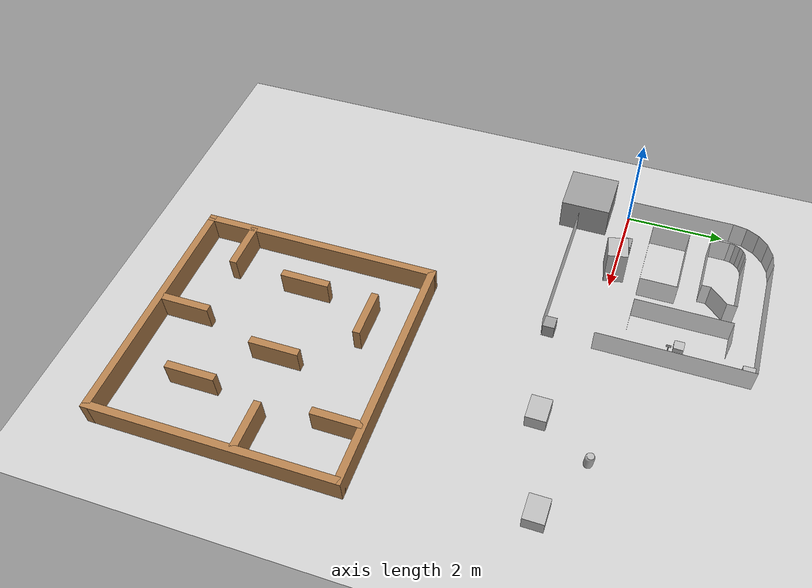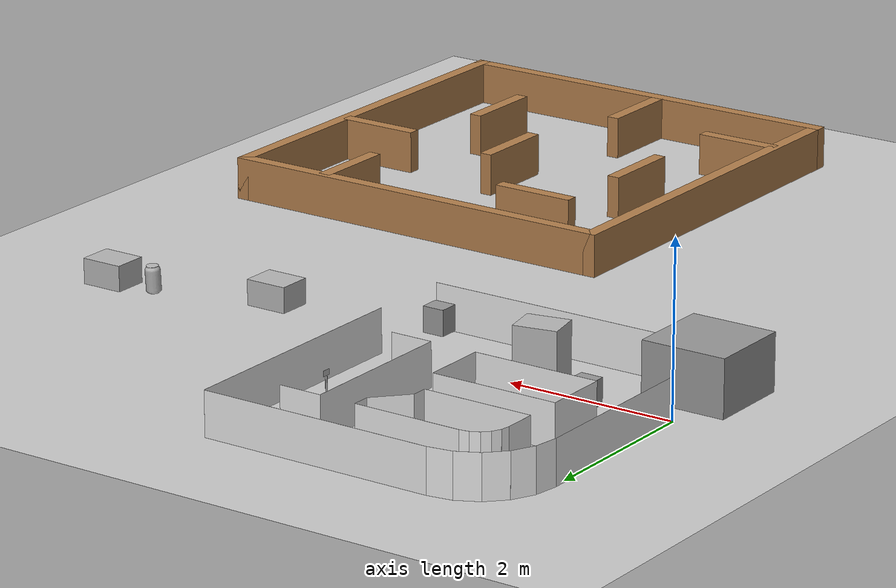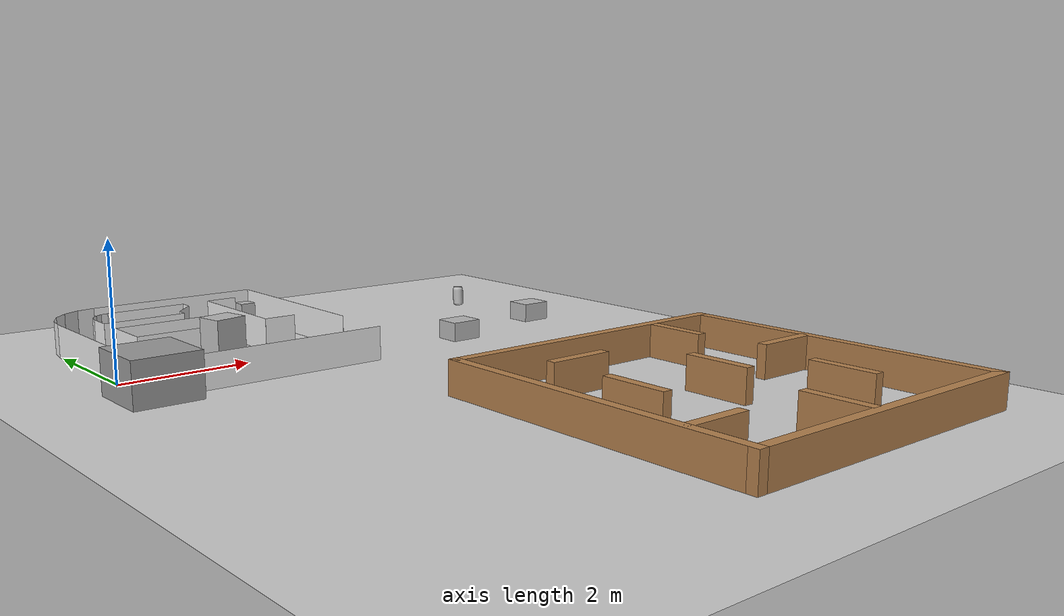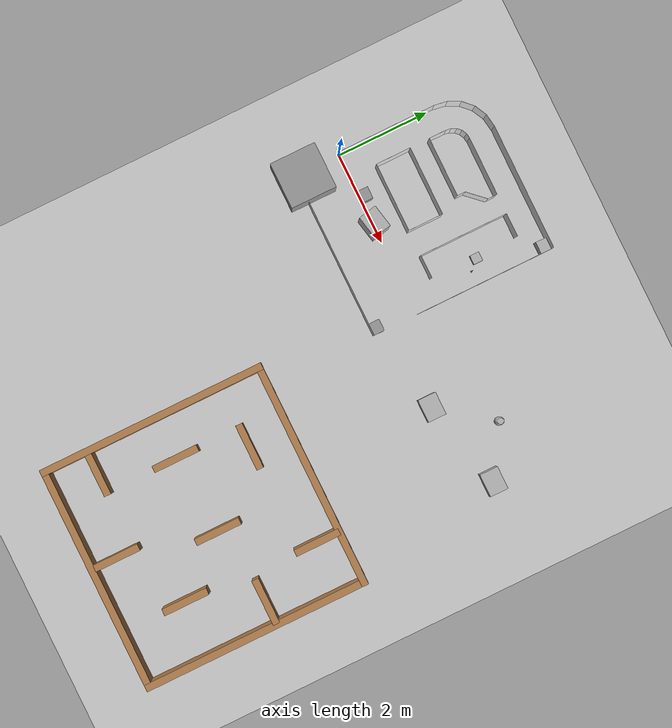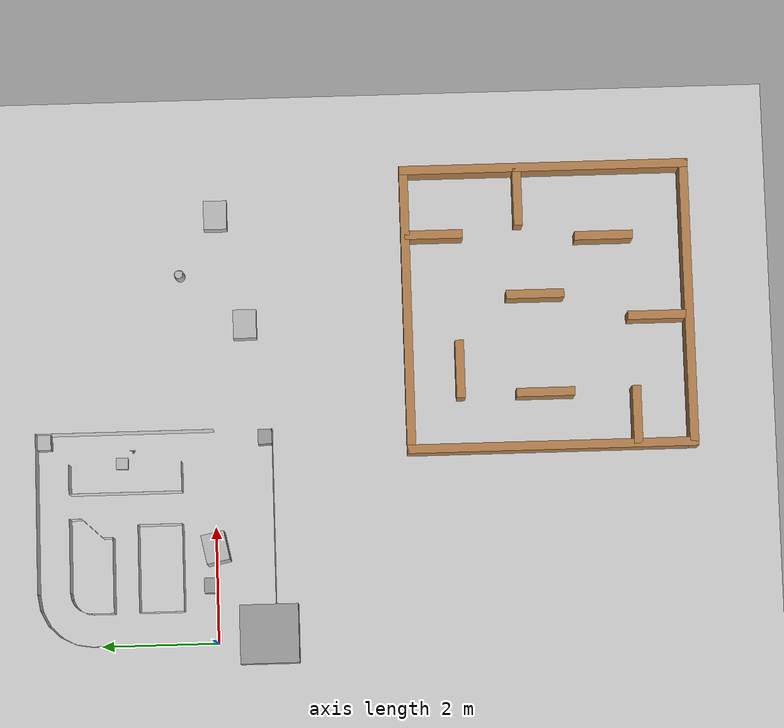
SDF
<sdf version="1.7">
 <world name="default">
  <light name="sun" type="directional">
   <pose>0 0 10 0 -0 0</pose>
   <diffuse>0.8 0.8 0.8 1</diffuse>
   <specular>0.1 0.1 0.1 1</specular>
   <attenuation>
    <range>1000</range>
    <constant>0.9</constant>
    <linear>0.01</linear>
    <quadratic>0.001</quadratic>
   </attenuation>
   <direction>-0.5 0.5 -1</direction>
   <spot><inner_angle>0</inner_angle><outer_angle>0</outer_angle><falloff>0</falloff></spot>
  </light>
  <model name="ground_plane">
   <static>1</static>
   <link name="link">
    <collision name="collision">
     <geometry><plane><normal>0 0 1</normal><size>100 100</size></plane></geometry>
     <surface><friction><ode><mu>100</mu><mu2>50</mu2></ode></friction></surface>
    </collision>
    <visual name="visual">
     <cast_shadows>0</cast_shadows>
     <geometry><plane><normal>0 0 1</normal><size>100 100</size></plane></geometry>
     <material>
      <script><uri>file://media/materials/scripts/gazebo.material</uri><name>Gazebo/Grey</name></script>
     </material>
    </visual>
   </link>
  </model>
  <model name="wall_0">
   <static>1</static>
   <link name="link">
    <collision name="collision"><geometry><box><size>2.1336 0.001 1</size></box></geometry></collision>
    <visual name="visual">
     <geometry><box><size>2.1336 0.001 1</size></box></geometry>
     <material>
      <script><name>Gazebo/White</name><uri>file://media/materials/scripts/gazebo.material</uri></script>
     </material>
    </visual>
   </link>
   <pose>0 1.0668 0 0 -0 1.5708</pose>
  </model>
  <model name="wall_1">
   <static>1</static>
   <link name="link">
    <collision name="collision"><geometry><box><size>0.286088 0.001 1</size></box></geometry></collision>
    <visual name="visual">
     <geometry><box><size>0.286088 0.001 1</size></box></geometry>
     <material>
      <script><name>Gazebo/White</name><uri>file://media/materials/scripts/gazebo.material</uri></script>
     </material>
    </visual>
   </link>
   <pose>0.022377 2.27489 0 0 -0 1.41372</pose>
  </model>
  <model name="wall_2">
   <static>1</static>
   <link name="link">
    <collision name="collision"><geometry><box><size>0.286088 0.001 1</size></box></geometry></collision>
    <visual name="visual">
     <geometry><box><size>0.286088 0.001 1</size></box></geometry>
     <material>
      <script><name>Gazebo/White</name><uri>file://media/materials/scripts/gazebo.material</uri></script>
     </material>
    </visual>
   </link>
   <pose>0.109695 2.54362 0 0 -0 1.09956</pose>
  </model>
  <model name="wall_3">
   <static>1</static>
   <link name="link">
    <collision name="collision"><geometry><box><size>0.286088 0.001 1</size></box></geometry></collision>
    <visual name="visual">
     <geometry><box><size>0.286088 0.001 1</size></box></geometry>
     <material>
      <script><name>Gazebo/White</name><uri>file://media/materials/scripts/gazebo.material</uri></script>
     </material>
    </visual>
   </link>
   <pose>0.275783 2.77222 0 0 -0 0.785398</pose>
  </model>
  <model name="wall_4">
   <static>1</static>
   <link name="link">
    <collision name="collision"><geometry><box><size>0.286088 0.001 1</size></box></geometry></collision>
    <visual name="visual">
     <geometry><box><size>0.286088 0.001 1</size></box></geometry>
     <material>
      <script><name>Gazebo/White</name><uri>file://media/materials/scripts/gazebo.material</uri></script>
     </material>
    </visual>
   </link>
   <pose>0.504383 2.93831 0 0 -0 0.471239</pose>
  </model>
  <model name="wall_5">
   <static>1</static>
   <link name="link">
    <collision name="collision"><geometry><box><size>0.286088 0.001 1</size></box></geometry></collision>
    <visual name="visual">
     <geometry><box><size>0.286088 0.001 1</size></box></geometry>
     <material>
      <script><name>Gazebo/White</name><uri>file://media/materials/scripts/gazebo.material</uri></script>
     </material>
    </visual>
   </link>
   <pose>0.773119 3.02563 0 0 -0 0.15708</pose>
  </model>
  <model name="wall_6">
   <static>1</static>
   <link name="link">
    <collision name="collision"><geometry><box><size>2.74321 0.001 1</size></box></geometry></collision>
    <visual name="visual">
     <geometry><box><size>2.74321 0.001 1</size></box></geometry>
     <material>
      <script><name>Gazebo/White</name><uri>file://media/materials/scripts/gazebo.material</uri></script>
     </material>
    </visual>
   </link>
   <pose>2.286 3.04801 0 0 -0 0</pose>
  </model>
  <model name="wall_7">
   <static>1</static>
   <link name="link">
    <collision name="collision"><geometry><box><size>3.04801 0.001 1</size></box></geometry></collision>
    <visual name="visual">
     <geometry><box><size>3.04801 0.001 1</size></box></geometry>
     <material>
      <script><name>Gazebo/White</name><uri>file://media/materials/scripts/gazebo.material</uri></script>
     </material>
    </visual>
   </link>
   <pose>3.65761 1.524 0 0 0 -1.5708</pose>
  </model>
  <model name="wall_8">
   <static>1</static>
   <link name="link">
    <collision name="collision"><geometry><box><size>3.65761 0.001 1</size></box></geometry></collision>
    <visual name="visual">
     <geometry><box><size>3.65761 0.001 1</size></box></geometry>
     <material>
      <script><name>Gazebo/White</name><uri>file://media/materials/scripts/gazebo.material</uri></script>
     </material>
    </visual>
   </link>
   <pose>1.8288 -1.00563 0 0 0 -3.14159</pose>
  </model>
  <model name="wall_9">
   <static>1</static>
   <link name="link">
    <collision name="collision"><geometry><box><size>0.762002 0.001 1</size></box></geometry></collision>
    <visual name="visual">
     <geometry><box><size>0.762002 0.001 1</size></box></geometry>
     <material>
      <script><name>Gazebo/White</name><uri>file://media/materials/scripts/gazebo.material</uri></script>
     </material>
    </visual>
   </link>
   <pose>0.558801 0.939802 0 0 -0 1.5708</pose>
  </model>
  <model name="wall_10">
   <static>1</static>
   <link name="link">
    <collision name="collision"><geometry><box><size>1.4986 0.001 1</size></box></geometry></collision>
    <visual name="visual">
     <geometry><box><size>1.4986 0.001 1</size></box></geometry>
     <material>
      <script><name>Gazebo/White</name><uri>file://media/materials/scripts/gazebo.material</uri></script>
     </material>
    </visual>
   </link>
   <pose>1.3081 1.3208 0 0 -0 0</pose>
  </model>
  <model name="wall_11">
   <static>1</static>
   <link name="link">
    <collision name="collision"><geometry><box><size>0.762002 0.001 1</size></box></geometry></collision>
    <visual name="visual">
     <geometry><box><size>0.762002 0.001 1</size></box></geometry>
     <material>
      <script><name>Gazebo/White</name><uri>file://media/materials/scripts/gazebo.material</uri></script>
     </material>
    </visual>
   </link>
   <pose>2.0574 0.939802 0 0 0 -1.5708</pose>
  </model>
  <model name="wall_12">
   <static>1</static>
   <link name="link">
    <collision name="collision"><geometry><box><size>1.4986 0.001 1</size></box></geometry></collision>
    <visual name="visual">
     <geometry><box><size>1.4986 0.001 1</size></box></geometry>
     <material>
      <script><name>Gazebo/White</name><uri>file://media/materials/scripts/gazebo.material</uri></script>
     </material>
    </visual>
   </link>
   <pose>1.3081 0.558801 0 0 0 -3.14159</pose>
  </model>
  <model name="wall_13">
   <static>1</static>
   <link name="link">
    <collision name="collision"><geometry><box><size>0.381001 0.001 1</size></box></geometry></collision>
    <visual name="visual">
     <geometry><box><size>0.381001 0.001 1</size></box></geometry>
     <material>
      <script><name>Gazebo/White</name><uri>file://media/materials/scripts/gazebo.material</uri></script>
     </material>
    </visual>
   </link>
   <pose>0.558801 1.9431 0 0 -0 1.5708</pose>
  </model>
  <model name="wall_14">
   <static>1</static>
   <link name="link">
    <collision name="collision"><geometry><box><size>0.111256 0.001 1</size></box></geometry></collision>
    <visual name="visual">
     <geometry><box><size>0.111256 0.001 1</size></box></geometry>
     <material>
      <script><name>Gazebo/White</name><uri>file://media/materials/scripts/gazebo.material</uri></script>
     </material>
    </visual>
   </link>
   <pose>0.567503 2.18855 0 0 -0 1.41372</pose>
  </model>
  <model name="wall_15">
   <static>1</static>
   <link name="link">
    <collision name="collision"><geometry><box><size>0.111256 0.001 1</size></box></geometry></collision>
    <visual name="visual">
     <geometry><box><size>0.111256 0.001 1</size></box></geometry>
     <material>
      <script><name>Gazebo/White</name><uri>file://media/materials/scripts/gazebo.material</uri></script>
     </material>
    </visual>
   </link>
   <pose>0.60146 2.29306 0 0 -0 1.09956</pose>
  </model>
  <model name="wall_16">
   <static>1</static>
   <link name="link">
    <collision name="collision"><geometry><box><size>0.111256 0.001 1</size></box></geometry></collision>
    <visual name="visual">
     <geometry><box><size>0.111256 0.001 1</size></box></geometry>
     <material>
      <script><name>Gazebo/White</name><uri>file://media/materials/scripts/gazebo.material</uri></script>
     </material>
    </visual>
   </link>
   <pose>0.66605 2.38196 0 0 -0 0.785398</pose>
  </model>
  <model name="wall_17">
   <static>1</static>
   <link name="link">
    <collision name="collision"><geometry><box><size>0.111256 0.001 1</size></box></geometry></collision>
    <visual name="visual">
     <geometry><box><size>0.111256 0.001 1</size></box></geometry>
     <material>
      <script><name>Gazebo/White</name><uri>file://media/materials/scripts/gazebo.material</uri></script>
     </material>
    </visual>
   </link>
   <pose>0.75495 2.44655 0 0 -0 0.471239</pose>
  </model>
  <model name="wall_18">
   <static>1</static>
   <link name="link">
    <collision name="collision"><geometry><box><size>0.111256 0.001 1</size></box></geometry></collision>
    <visual name="visual">
     <geometry><box><size>0.111256 0.001 1</size></box></geometry>
     <material>
      <script><name>Gazebo/White</name><uri>file://media/materials/scripts/gazebo.material</uri></script>
     </material>
    </visual>
   </link>
   <pose>0.859458 2.4805 0 0 -0 0.15708</pose>
  </model>
  <model name="wall_19">
   <static>1</static>
   <link name="link">
    <collision name="collision"><geometry><box><size>1.27 0.001 1</size></box></geometry></collision>
    <visual name="visual">
     <geometry><box><size>1.27 0.001 1</size></box></geometry>
     <material>
      <script><name>Gazebo/White</name><uri>file://media/materials/scripts/gazebo.material</uri></script>
     </material>
    </visual>
   </link>
   <pose>1.5494 2.48921 0 0 -0 0</pose>
  </model>
  <model name="wall_20">
   <static>1</static>
   <link name="link">
    <collision name="collision"><geometry><box><size>0.2032 0.001 1</size></box></geometry></collision>
    <visual name="visual">
     <geometry><box><size>0.2032 0.001 1</size></box></geometry>
     <material>
      <script><name>Gazebo/White</name><uri>file://media/materials/scripts/gazebo.material</uri></script>
     </material>
    </visual>
   </link>
   <pose>2.1844 2.38761 0 0 0 -1.5708</pose>
  </model>
  <model name="wall_21">
   <static>1</static>
   <link name="link">
    <collision name="collision"><geometry><box><size>0.485267 0.001 1</size></box></geometry></collision>
    <visual name="visual">
     <geometry><box><size>0.485267 0.001 1</size></box></geometry>
     <material>
      <script><name>Gazebo/White</name><uri>file://media/materials/scripts/gazebo.material</uri></script>
     </material>
    </visual>
   </link>
   <pose>2.0193 2.1082 0 0 0 -2.31917</pose>
  </model>
  <model name="wall_22">
   <static>1</static>
   <link name="link">
    <collision name="collision"><geometry><box><size>0.1778 0.001 1</size></box></geometry></collision>
    <visual name="visual">
     <geometry><box><size>0.1778 0.001 1</size></box></geometry>
     <material>
      <script><name>Gazebo/White</name><uri>file://media/materials/scripts/gazebo.material</uri></script>
     </material>
    </visual>
   </link>
   <pose>1.8542 1.8415 0 0 0 -1.5708</pose>
  </model>
  <model name="wall_23">
   <static>1</static>
   <link name="link">
    <collision name="collision"><geometry><box><size>1.2954 0.001 1</size></box></geometry></collision>
    <visual name="visual">
     <geometry><box><size>1.2954 0.001 1</size></box></geometry>
     <material>
      <script><name>Gazebo/White</name><uri>file://media/materials/scripts/gazebo.material</uri></script>
     </material>
    </visual>
   </link>
   <pose>1.2065 1.7526 0 0 0 -3.14159</pose>
  </model>
  <model name="wall_24">
   <static>1</static>
   <link name="link">
    <collision name="collision"><geometry><box><size>0.508001 0.001 1</size></box></geometry></collision>
    <visual name="visual">
     <geometry><box><size>0.508001 0.001 1</size></box></geometry>
     <material>
      <script><name>Gazebo/White</name><uri>file://media/materials/scripts/gazebo.material</uri></script>
     </material>
    </visual>
   </link>
   <pose>2.87021 2.48921 0 0 -0 0</pose>
  </model>
  <model name="wall_25">
   <static>1</static>
   <link name="link">
    <collision name="collision"><geometry><box><size>0.508001 0.001 1</size></box></geometry></collision>
    <visual name="visual">
     <geometry><box><size>0.508001 0.001 1</size></box></geometry>
     <material>
      <script><name>Gazebo/White</name><uri>file://media/materials/scripts/gazebo.material</uri></script>
     </material>
    </visual>
   </link>
   <pose>2.87021 0.558801 0 0 0 -3.14159</pose>
  </model>
  <model name="wall_26">
   <static>1</static>
   <link name="link">
    <collision name="collision"><geometry><box><size>1.9304 0.001 1</size></box></geometry></collision>
    <visual name="visual">
     <geometry><box><size>1.9304 0.001 1</size></box></geometry>
     <material>
      <script><name>Gazebo/White</name><uri>file://media/materials/scripts/gazebo.material</uri></script>
     </material>
    </visual>
   </link>
   <pose>2.6162 1.524 0 0 -0 1.5708</pose>
  </model>
  <model name="flag">
   <link name="plate">
    <pose>0 0 0.2425 0 -0 0</pose>
    <collision name="collision">
     <geometry><box><size>0.001 0.1 0.065</size></box></geometry>
     <surface><friction><ode><mu>1</mu><mu2>1</mu2></ode></friction></surface>
    </collision>
    <visual name="visual"><geometry><box><size>0.001 0.1 0.065</size></box></geometry></visual>
    <inertial>
     <inertia><ixx>0.1</ixx><ixy>0</ixy><ixz>0</ixz><iyy>0.1</iyy><iyz>0</iyz><izz>0.1</izz></inertia>
     <mass>0.1</mass>
    </inertial>
   </link>
   <link name="pole">
    <pose>0 0 0.11 0 -0 0</pose>
    <collision name="collision">
     <geometry><cylinder><radius>0.01</radius><length>0.2</length></cylinder></geometry>
     <surface>
      <friction><torsional><coefficient>1</coefficient></torsional><ode><mu>1</mu><mu2>1</mu2></ode></friction>
     </surface>
    </collision>
    <visual name="visual">
     <geometry><cylinder><radius>0.01</radius><length>0.2</length></cylinder></geometry>
    </visual>
    <inertial>
     <inertia><ixx>1</ixx><ixy>0</ixy><ixz>0</ixz><iyy>1</iyy><iyz>0</iyz><izz>1</izz></inertia>
     <mass>1</mass>
    </inertial>
   </link>
   <link name="base">
    <collision name="collision">
     <geometry><cylinder><radius>0.02</radius><length>0.02</length></cylinder></geometry>
     <surface><friction><ode><mu>0.01</mu><mu2>0.01</mu2></ode></friction></surface>
    </collision>
    <visual name="visual">
     <geometry><cylinder><radius>0.02</radius><length>0.02</length></cylinder></geometry>
    </visual>
    <inertial>
     <inertia><ixx>0.1</ixx><ixy>0</ixy><ixz>0</ixz><iyy>0.1</iyy><iyz>0</iyz><izz>0.1</izz></inertia>
     <mass>0.1</mass>
    </inertial>
    <gravity>0</gravity>
   </link>
   <joint name="base_pole" type="fixed">
    <parent>base</parent>
    <child>pole</child>
    <pose>0 0 0.02 0 -0 0</pose>
   </joint>
   <joint name="pole_plate" type="fixed">
    <parent>pole</parent>
    <child>plate</child>
    <pose>0 0 0.1 0 -0 0</pose>
   </joint>
   <pose>3.34999 1.40117 0.010022 -0.001131 0.00093 -3.14054</pose>
  </model>
  <gravity>0 0 -9.8</gravity>
  <magnetic_field>6e-06 2.3e-05 -4.2e-05</magnetic_field>
  <atmosphere type="adiabatic"/>
  <physics name="default_physics" default="0" type="ode">
   <max_step_size>0.001</max_step_size>
   <real_time_factor>1</real_time_factor>
   <real_time_update_rate>1000</real_time_update_rate>
  </physics>
  <scene><ambient>0.4 0.4 0.4 1</ambient><background>0.7 0.7 0.7 1</background><shadows>1</shadows></scene>
  <spherical_coordinates>
   <surface_model>EARTH_WGS84</surface_model>
   <latitude_deg>0</latitude_deg>
   <longitude_deg>0</longitude_deg>
   <elevation>0</elevation>
   <heading_deg>0</heading_deg>
  </spherical_coordinates>
  <model name="unit_box">
   <pose>0.13088 -0.8858 0.150696 0 -0 8e-06</pose>
   <link name="link">
    <inertial>
     <mass>1</mass>
     <inertia>
      <ixx>0.166667</ixx>
      <ixy>0</ixy>
      <ixz>0</ixz>
      <iyy>0.166667</iyy>
      <iyz>0</iyz>
      <izz>0.166667</izz>
     </inertia>
    </inertial>
    <collision name="collision"><geometry><box><size>1 0.999999 1</size></box></geometry></collision>
    <visual name="visual">
     <geometry><box><size>1 0.999999 1</size></box></geometry>
     <material>
      <script><name>Gazebo/Grey</name><uri>file://media/materials/scripts/gazebo.material</uri></script>
     </material>
    </visual>
   </link>
  </model>
  <model name="turtlebot3_plaza">
   <pose>5.63971 -5.81892 0 0 -0 0</pose>
   <link name="Wall_0">
    <collision name="Wall_0_Collision">
     <geometry><box><size>5 0.15 0.5</size></box></geometry>
     <pose>0 0 0.25 0 -0 0</pose>
    </collision>
    <visual name="Wall_0_Visual">
     <pose>0 0 0.25 0 -0 0</pose>
     <geometry><box><size>5 0.15 0.5</size></box></geometry>
     <material>
      <script><uri>file://media/materials/scripts/gazebo.material</uri><name>Gazebo/Wood</name></script>
      <ambient>1 1 1 1</ambient>
     </material>
    </visual>
    <pose>-2.425 0 0 0 -0 1.5708</pose>
   </link>
   <link name="Wall_11">
    <collision name="Wall_11_Collision">
     <geometry><box><size>1 0.15 0.5</size></box></geometry>
     <pose>0 0 0.25 0 -0 0</pose>
    </collision>
    <visual name="Wall_11_Visual">
     <pose>0 0 0.25 0 -0 0</pose>
     <geometry><box><size>1 0.15 0.5</size></box></geometry>
     <material>
      <script><uri>file://media/materials/scripts/gazebo.material</uri><name>Gazebo/Wood</name></script>
      <ambient>1 1 1 1</ambient>
     </material>
    </visual>
    <pose>-1.937 -1.467 0 0 -0 0</pose>
   </link>
   <link name="Wall_13">
    <collision name="Wall_13_Collision">
     <geometry><box><size>1 0.15 0.5</size></box></geometry>
     <pose>0 0 0.25 0 -0 0</pose>
    </collision>
    <visual name="Wall_13_Visual">
     <pose>0 0 0.25 0 -0 0</pose>
     <geometry><box><size>1 0.15 0.5</size></box></geometry>
     <material>
      <script><uri>file://media/materials/scripts/gazebo.material</uri><name>Gazebo/Wood</name></script>
      <ambient>1 1 1 1</ambient>
     </material>
    </visual>
    <pose>-0.22 -1.866 0 0 0 -1.5708</pose>
   </link>
   <link name="Wall_15">
    <collision name="Wall_15_Collision">
     <geometry><box><size>1 0.15 0.5</size></box></geometry>
     <pose>0 0 0.25 0 -0 0</pose>
    </collision>
    <visual name="Wall_15_Visual">
     <pose>0 0 0.25 0 -0 0</pose>
     <geometry><box><size>1 0.15 0.5</size></box></geometry>
     <material>
      <script><uri>file://media/materials/scripts/gazebo.material</uri><name>Gazebo/Wood</name></script>
      <ambient>1 1 1 1</ambient>
     </material>
    </visual>
    <pose>1.195 -1.002 0 0 -0 1.5708</pose>
   </link>
   <link name="Wall_17">
    <collision name="Wall_17_Collision">
     <geometry><box><size>1 0.15 0.5</size></box></geometry>
     <pose>0 0 0.25 0 -0 0</pose>
    </collision>
    <visual name="Wall_17_Visual">
     <pose>0 0 0.25 0 -0 0</pose>
     <geometry><box><size>1 0.15 0.5</size></box></geometry>
     <material>
      <script><uri>file://media/materials/scripts/gazebo.material</uri><name>Gazebo/Wood</name></script>
      <ambient>1 1 1 1</ambient>
     </material>
    </visual>
    <pose>1.288 1.93 0 0 0 -1.5708</pose>
   </link>
   <link name="Wall_19">
    <collision name="Wall_19_Collision">
     <geometry><box><size>1 0.15 0.5</size></box></geometry>
     <pose>0 0 0.25 0 -0 0</pose>
    </collision>
    <visual name="Wall_19_Visual">
     <pose>0 0 0.25 0 -0 0</pose>
     <geometry><box><size>1 0.15 0.5</size></box></geometry>
     <material>
      <script><uri>file://media/materials/scripts/gazebo.material</uri><name>Gazebo/Wood</name></script>
      <ambient>1 1 1 1</ambient>
     </material>
    </visual>
    <pose>1.91128 0.4632 0 0 -0 0</pose>
   </link>
   <link name="Wall_2">
    <collision name="Wall_2_Collision">
     <geometry><box><size>5 0.15 0.5</size></box></geometry>
     <pose>0 0 0.25 0 -0 0</pose>
    </collision>
    <visual name="Wall_2_Visual">
     <pose>0 0 0.25 0 -0 0</pose>
     <geometry><box><size>5 0.15 0.5</size></box></geometry>
     <material>
      <script><uri>file://media/materials/scripts/gazebo.material</uri><name>Gazebo/Wood</name></script>
      <ambient>1 1 1 1</ambient>
     </material>
    </visual>
    <pose>0 2.425 0 0 -0 0</pose>
   </link>
   <link name="Wall_21">
    <collision name="Wall_21_Collision">
     <geometry><box><size>1 0.15 0.5</size></box></geometry>
     <pose>0 0 0.25 0 -0 0</pose>
    </collision>
    <visual name="Wall_21_Visual">
     <pose>0 0 0.25 0 -0 0</pose>
     <geometry><box><size>1 0.15 0.5</size></box></geometry>
     <material>
      <script><uri>file://media/materials/scripts/gazebo.material</uri><name>Gazebo/Wood</name></script>
      <ambient>1 1 1 1</ambient>
     </material>
    </visual>
    <pose>0.204 0.215 0 0 0 -1.5708</pose>
   </link>
   <link name="Wall_3">
    <collision name="Wall_3_Collision">
     <geometry><box><size>5 0.15 0.5</size></box></geometry>
     <pose>0 0 0.25 0 -0 0</pose>
    </collision>
    <visual name="Wall_3_Visual">
     <pose>0 0 0.25 0 -0 0</pose>
     <geometry><box><size>5 0.15 0.5</size></box></geometry>
     <material>
      <script><uri>file://media/materials/scripts/gazebo.material</uri><name>Gazebo/Wood</name></script>
      <ambient>1 1 1 1</ambient>
     </material>
    </visual>
    <pose>2.425 0 0 0 0 -1.5708</pose>
   </link>
   <link name="Wall_4">
    <collision name="Wall_4_Collision">
     <geometry><box><size>5 0.15 0.5</size></box></geometry>
     <pose>0 0 0.25 0 -0 0</pose>
    </collision>
    <visual name="Wall_4_Visual">
     <pose>0 0 0.25 0 -0 0</pose>
     <geometry><box><size>5 0.15 0.5</size></box></geometry>
     <material>
      <script><uri>file://media/materials/scripts/gazebo.material</uri><name>Gazebo/Wood</name></script>
      <ambient>1 1 1 1</ambient>
     </material>
    </visual>
    <pose>0 -2.425 0 0 -0 3.14159</pose>
   </link>
   <link name="Wall_7">
    <collision name="Wall_7_Collision">
     <geometry><box><size>1 0.15 0.5</size></box></geometry>
     <pose>0 0 0.25 0 -0 0</pose>
    </collision>
    <visual name="Wall_7_Visual">
     <pose>0 0 0.25 0 -0 0</pose>
     <geometry><box><size>1 0.15 0.5</size></box></geometry>
     <material>
      <script><uri>file://media/materials/scripts/gazebo.material</uri><name>Gazebo/Wood</name></script>
      <ambient>1 1 1 1</ambient>
     </material>
    </visual>
    <pose>-1.064 1.548 0 0 -0 0</pose>
   </link>
   <link name="Wall_9">
    <collision name="Wall_9_Collision">
     <geometry><box><size>1 0.15 0.5</size></box></geometry>
     <pose>0 0 0.25 0 -0 0</pose>
    </collision>
    <visual name="Wall_9_Visual">
     <pose>0 0 0.25 0 -0 0</pose>
     <geometry><box><size>1 0.15 0.5</size></box></geometry>
     <material>
      <script><uri>file://media/materials/scripts/gazebo.material</uri><name>Gazebo/Wood</name></script>
      <ambient>1 1 1 1</ambient>
     </material>
    </visual>
    <pose>-1.502 0.092 0 0 0 -1.5708</pose>
   </link>
   <static>1</static>
  </model>
  <model name="unit_box_clone_0">
   <pose>0.993739 0.100476 0.150696 0 -0 1e-05</pose>
   <link name="link">
    <inertial>
     <mass>1</mass>
     <inertia>
      <ixx>0.166667</ixx>
      <ixy>0</ixy>
      <ixz>0</ixz>
      <iyy>0.166667</iyy>
      <iyz>0</iyz>
      <izz>0.166667</izz>
     </inertia>
    </inertial>
    <collision name="collision">
     <geometry><box><size>0.259292 0.232104 0.301392</size></box></geometry>
    </collision>
    <visual name="visual">
     <geometry><box><size>0.259292 0.232104 0.301392</size></box></geometry>
     <material>
      <script><name>Gazebo/Grey</name><uri>file://media/materials/scripts/gazebo.material</uri></script>
     </material>
    </visual>
   </link>
  </model>
  <model name="unit_box_clone_2">
   <pose>3.52747 2.91638 0.150696 0 -0 -4e-06</pose>
   <link name="link">
    <inertial>
     <mass>1</mass>
     <inertia>
      <ixx>0.166667</ixx>
      <ixy>0</ixy>
      <ixz>0</ixz>
      <iyy>0.166667</iyy>
      <iyz>0</iyz>
      <izz>0.166667</izz>
     </inertia>
    </inertial>
    <collision name="collision">
     <geometry><box><size>0.259292 0.232104 0.301392</size></box></geometry>
    </collision>
    <visual name="visual">
     <geometry><box><size>0.259292 0.232104 0.301392</size></box></geometry>
     <material>
      <script>
       <uri>model:/catkin_ws/src/asl_turtlebot/models/materials/scripts</uri>
       <uri>model:/catkin_ws/src/asl_turtlebot/models/materials/textures</uri>
       <name>animal/Diffuse</name>
      </script>
     </material>
    </visual>
   </link>
  </model>
  <model name="cardboard_box1">
   <pose>1.61279 -0.006215 0.449 0 -0 0</pose>
   <link name="link">
    <inertial>
     <mass>2</mass>
     <inertia>
      <ixx>0.0416667</ixx>
      <ixy>0</ixy>
      <ixz>0</ixz>
      <iyy>0.0566667</iyy>
      <iyz>0</iyz>
      <izz>0.0683333</izz>
     </inertia>
    </inertial>
    <collision name="collision">
     <geometry><box><size>0.5 0.4 0.9</size></box></geometry>
     <surface>
      <friction><ode><mu>1</mu><mu2>1</mu2></ode></friction>
      <contact><ode><kp>1e+07</kp><kd>1</kd><min_depth>0.001</min_depth><max_vel>0.1</max_vel></ode></contact>
     </surface>
    </collision>
    <visual name="visual">
     <pose>0 0 -0.15 0 -0 0.2</pose>
     <geometry><box><size>0.5 0.4 0.9</size></box></geometry>
     <material>
      <script>
       <uri>model://cardboard_box/materials/scripts</uri>
       <uri>model://cardboard_box/materials/textures</uri>
       <name>animal/Diffuse</name>
      </script>
     </material>
    </visual>
   </link>
  </model>
  <model name="unit_box_clone_3">
   <pose>3.52745 -0.877377 0.150696 0 0 -5e-06</pose>
   <link name="link">
    <inertial>
     <mass>1</mass>
     <inertia>
      <ixx>0.166667</ixx>
      <ixy>0</ixy>
      <ixz>0</ixz>
      <iyy>0.166667</iyy>
      <iyz>0</iyz>
      <izz>0.166667</izz>
     </inertia>
    </inertial>
    <collision name="collision">
     <geometry><box><size>0.259292 0.232104 0.301392</size></box></geometry>
    </collision>
    <visual name="visual">
     <geometry><box><size>0.259292 0.232104 0.301392</size></box></geometry>
     <material>
      <script><name>Gazebo/Grey</name><uri>file://media/materials/scripts/gazebo.material</uri></script>
     </material>
    </visual>
   </link>
  </model>
  <model name="cardboard_box">
   <pose>7.41402 -0.107796 0.149 0 -0 0</pose>
   <link name="link">
    <inertial>
     <mass>2</mass>
     <inertia>
      <ixx>0.0416667</ixx>
      <ixy>0</ixy>
      <ixz>0</ixz>
      <iyy>0.0566667</iyy>
      <iyz>0</iyz>
      <izz>0.0683333</izz>
     </inertia>
    </inertial>
    <collision name="collision">
     <geometry><box><size>0.5 0.4 0.3</size></box></geometry>
     <surface>
      <friction><ode><mu>1</mu><mu2>1</mu2></ode></friction>
      <contact><ode><kp>1e+07</kp><kd>1</kd><min_depth>0.001</min_depth><max_vel>0.1</max_vel></ode></contact>
     </surface>
    </collision>
    <visual name="visual">
     <pose>0 0 -0.15 0 -0 0</pose>
     <geometry>
      <mesh><uri>model://cardboard_box/meshes/cardboard_box.dae</uri><scale>1.25932 1.00745 0.755591</scale></mesh>
     </geometry>
    </visual>
   </link>
  </model>
  <model name="coke_can">
   <link name="link">
    <inertial>
     <pose>0 0 0.06 0 -0 0</pose>
     <mass>0.39</mass>
     <inertia>
      <ixx>0.00055575</ixx>
      <ixy>0</ixy>
      <ixz>0</ixz>
      <iyy>0.00055575</iyy>
      <iyz>0</iyz>
      <izz>0.0001755</izz>
     </inertia>
    </inertial>
    <collision name="collision">
     <pose>0.003937 0.004724 -0.18 0 -0 0</pose>
     <geometry><mesh><uri>model://coke_can/meshes/coke_can.dae</uri></mesh></geometry>
     <surface>
      <friction><ode><mu>1</mu><mu2>1</mu2></ode></friction>
      <contact><ode><kp>1e+07</kp><kd>1</kd><min_depth>0.001</min_depth><max_vel>0.1</max_vel></ode></contact>
     </surface>
    </collision>
    <visual name="visual">
     <pose>0.003937 0.004724 -0.18 0 -0 0</pose>
     <geometry><mesh><uri>model://coke_can/meshes/coke_can.dae</uri></mesh></geometry>
    </visual>
   </link>
   <pose>6.34313 0.497666 -0.002779 -0.06235 0.002728 -0.000558</pose>
  </model>
  <model name="cardboard_box_0">
   <pose>5.49408 -0.577725 0.149 0 -0 0</pose>
   <link name="link">
    <inertial>
     <mass>2</mass>
     <inertia>
      <ixx>0.0416667</ixx>
      <ixy>0</ixy>
      <ixz>0</ixz>
      <iyy>0.0566667</iyy>
      <iyz>0</iyz>
      <izz>0.0683333</izz>
     </inertia>
    </inertial>
    <collision name="collision">
     <geometry><box><size>0.5 0.4 0.3</size></box></geometry>
     <surface>
      <friction><ode><mu>1</mu><mu2>1</mu2></ode></friction>
      <contact><ode><kp>1e+07</kp><kd>1</kd><min_depth>0.001</min_depth><max_vel>0.1</max_vel></ode></contact>
     </surface>
    </collision>
    <visual name="visual">
     <pose>0 0 -0.15 0 -0 0</pose>
     <geometry>
      <mesh><uri>model://cardboard_box/meshes/cardboard_box.dae</uri><scale>1.25932 1.00745 0.755591</scale></mesh>
     </geometry>
    </visual>
   </link>
  </model>
  <model name="coke_can_0">
   <link name="link">
    <inertial>
     <pose>-0.01 -0.012 0.15 0 -0 0</pose>
     <mass>0.39</mass>
     <inertia><ixx>0.00058</ixx><ixy>0</ixy><ixz>0</ixz><iyy>0.00058</iyy><iyz>0</iyz><izz>0.00019</izz></inertia>
    </inertial>
    <collision name="collision">
     <pose>0 0 -0.46 0 -0 0</pose>
     <geometry><mesh><uri>model://coke_can/meshes/coke_can.dae</uri></mesh></geometry>
     <surface>
      <friction><ode><mu>1</mu><mu2>1</mu2></ode></friction>
      <contact><ode><kp>1e+07</kp><kd>1</kd><min_depth>0.001</min_depth><max_vel>0.1</max_vel></ode></contact>
     </surface>
    </collision>
    <visual name="visual">
     <pose>0 0 -0.46 0 -0 0</pose>
     <geometry><mesh><uri>model://coke_can/meshes/coke_can.dae</uri></mesh></geometry>
    </visual>
   </link>
   <pose>7.14937 1.26468 -0.153691 3.14039 -0.003584 -0.373423</pose>
  </model>
  <model name="cow">
   <static>1</static>
   <link name="link">
    <collision name="collision"><geometry><box><size>0.2 0.2 0.2</size></box></geometry></collision>
    <visual name="visual">
     <cast_shadows>0</cast_shadows>
     <geometry><box><size>0.2 0.2 0.2</size></box></geometry>
     <material>
      <script>
       <uri>model://cow/materials/scripts</uri>
       <uri>model://cow/materials/textures</uri>
       <name>vrc/cow</name>
      </script>
     </material>
    </visual>
   </link>
   <pose>3.149 1.6 0 0 -0 0</pose>
  </model>
 </world>
</sdf>
